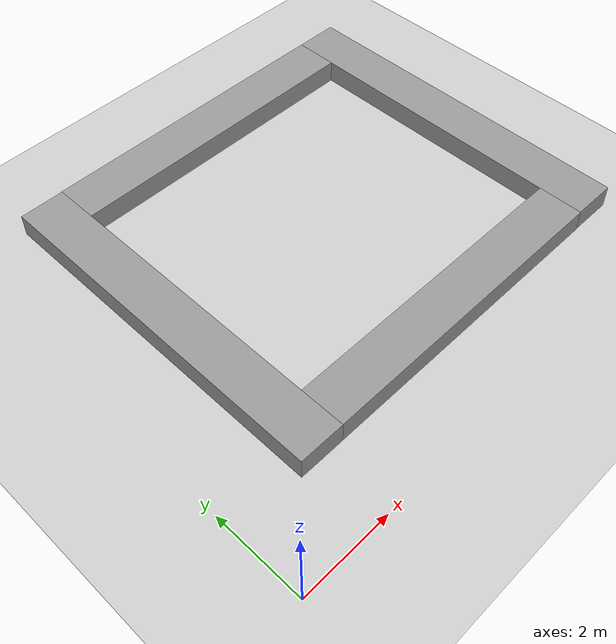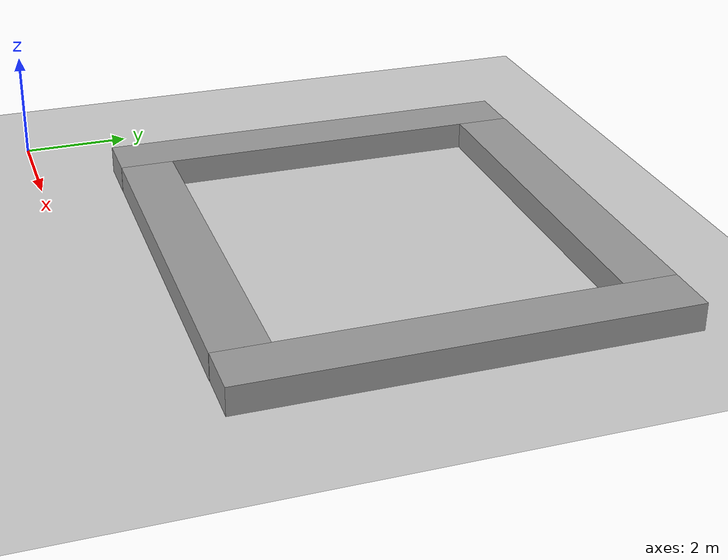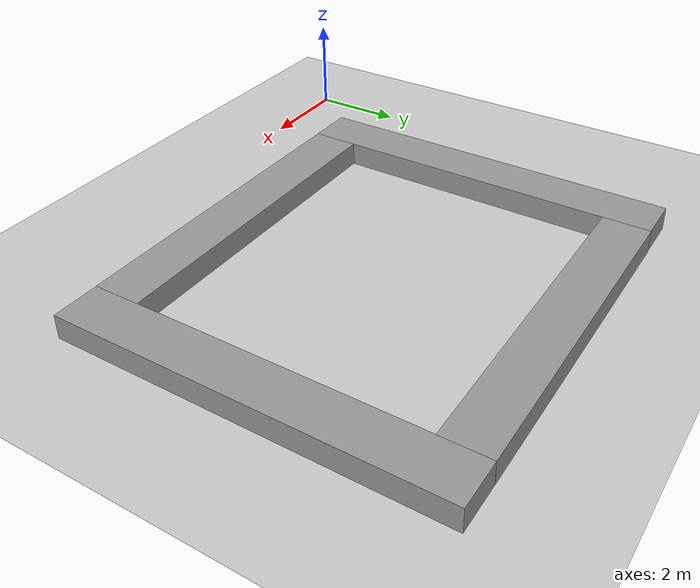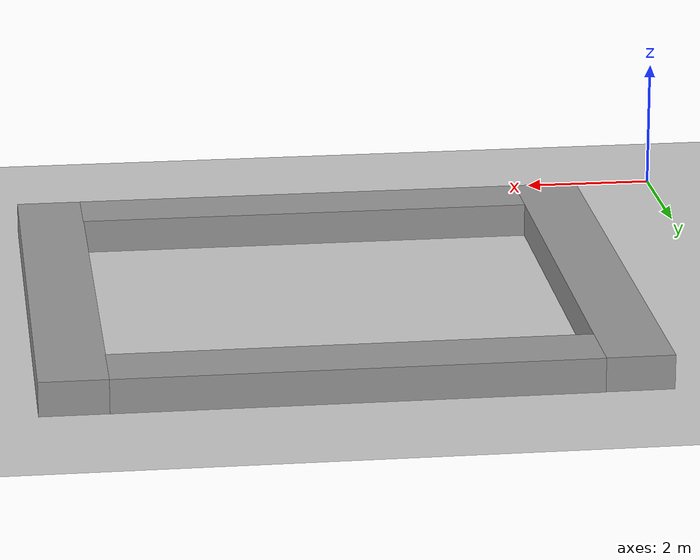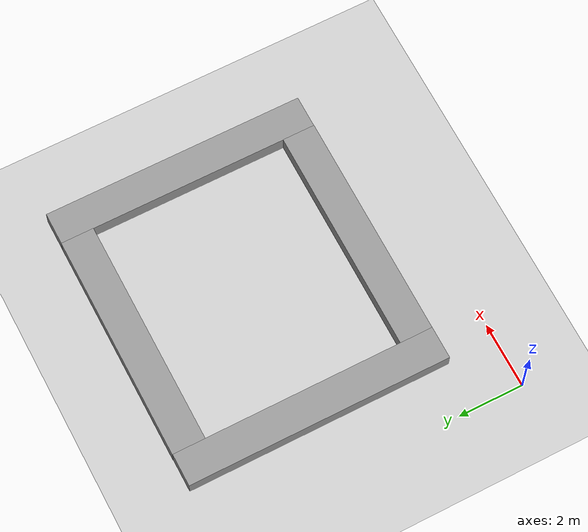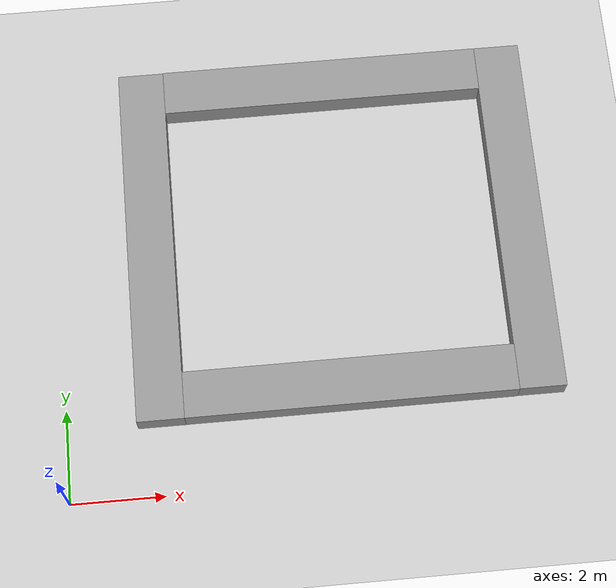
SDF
<sdf version='1.4'>
  <world name='default'>
    <!-- A global light source -->
    <include>
      <uri>model://sun</uri>
    </include>

    <!-- A ground plane -->
    <include>
      <uri>model://ground_plane</uri>
    </include>

    <physics type="ode">
      <real_time_update_rate>1000.0</real_time_update_rate>
      <max_step_size>0.001</max_step_size>
      <real_time_factor>1</real_time_factor>
      <ode>
        <solver>
          <type>quick</type>
          <iters>150</iters>
          <precon_iters>0</precon_iters>
          <sor>1.400000</sor>
          <use_dynamic_moi_rescaling>1</use_dynamic_moi_rescaling>
        </solver>
        <constraints>
          <cfm>0.00001</cfm>
          <erp>0.2</erp>
          <contact_max_correcting_vel>2000.000000</contact_max_correcting_vel>
          <contact_surface_layer>0.01000</contact_surface_layer>
        </constraints>
      </ode>
    </physics>

    <!-- A turtlebot symbol -->
    <include>
      <uri>model://turtlebot3_sala_de_juegos</uri>
    </include>

    <scene>
      <ambient>0.4 0.4 0.4 1</ambient>
      <background>0.7 0.7 0.7 1</background>
      <shadows>true</shadows>
    </scene>

    <gui fullscreen='0'>
      <camera name='user_camera'>
        <pose>0.0 0.0 17.0 0 1.5708 0</pose>
        <view_controller>orbit</view_controller>
      </camera>
    </gui>
  </world>
</sdf>

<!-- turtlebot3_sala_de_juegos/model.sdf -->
<sdf version='1.6'>
  <model name='model.sdf'>
    <link name='link'>
      <pose frame=''>5.98996 1.99729 -2e-05 0 -0 0</pose>
      <inertial>
        <mass>7.00344</mass>
        <inertia>
          <ixx>1.16724</ixx>
          <ixy>0</ixy>
          <ixz>0</ixz>
          <iyy>29.2091</iyy>
          <iyz>0</iyz>
          <izz>29.2091</izz>
        </inertia>
        <pose frame=''>0 0 0 0 -0 0</pose>
      </inertial>
      <self_collide>0</self_collide>
      <kinematic>0</kinematic>
      <visual name='visual'>
        <geometry>
          <box>
            <size>7.00344 1 1</size>
          </box>
        </geometry>
        <material>
          <script>
            <name>Gazebo/Grey</name>
            <uri>file://media/materials/scripts/gazebo.material</uri>
          </script>
          <ambient>0.3 0.3 0.3 1</ambient>
          <diffuse>0.7 0.7 0.7 1</diffuse>
          <specular>0.01 0.01 0.01 1</specular>
          <emissive>0 0 0 1</emissive>
        </material>
        <pose frame=''>0 0 0 0 -0 0</pose>
        <cast_shadows>1</cast_shadows>
        <transparency>0</transparency>
      </visual>
      <collision name='collision'>
        <laser_retro>0</laser_retro>
        <max_contacts>10</max_contacts>
        <pose frame=''>0 0 0 0 -0 0</pose>
        <geometry>
          <box>
            <size>7.00344 1 1</size>
          </box>
        </geometry>
        <surface>
          <friction>
            <ode>
              <mu>1</mu>
              <mu2>1</mu2>
              <fdir1>0 0 0</fdir1>
              <slip1>0</slip1>
              <slip2>0</slip2>
            </ode>
            <torsional>
              <coefficient>1</coefficient>
              <patch_radius>0</patch_radius>
              <surface_radius>0</surface_radius>
              <use_patch_radius>1</use_patch_radius>
              <ode>
                <slip>0</slip>
              </ode>
            </torsional>
          </friction>
          <bounce>
            <restitution_coefficient>0</restitution_coefficient>
            <threshold>1e+06</threshold>
          </bounce>
          <contact>
            <collide_without_contact>0</collide_without_contact>
            <collide_without_contact_bitmask>1</collide_without_contact_bitmask>
            <collide_bitmask>1</collide_bitmask>
            <ode>
              <soft_cfm>0</soft_cfm>
              <soft_erp>0.2</soft_erp>
              <kp>1e+13</kp>
              <kd>1</kd>
              <max_vel>0.01</max_vel>
              <min_depth>0</min_depth>
            </ode>
            <bullet>
              <split_impulse>1</split_impulse>
              <split_impulse_penetration_threshold>-0.01</split_impulse_penetration_threshold>
              <soft_cfm>0</soft_cfm>
              <soft_erp>0.2</soft_erp>
              <kp>1e+13</kp>
              <kd>1</kd>
            </bullet>
          </contact>
        </surface>
      </collision>
    </link>
    <link name='link_clone'>
      <pose frame=''>5.9963 9.00591 -8.8e-05 -1e-05 0 0</pose>
      <inertial>
        <mass>7.00344</mass>
        <inertia>
          <ixx>1.16724</ixx>
          <ixy>0</ixy>
          <ixz>0</ixz>
          <iyy>29.2091</iyy>
          <iyz>0</iyz>
          <izz>29.2091</izz>
        </inertia>
        <pose frame=''>0 0 0 0 -0 0</pose>
      </inertial>
      <self_collide>0</self_collide>
      <kinematic>0</kinematic>
      <visual name='visual'>
        <geometry>
          <box>
            <size>7.00344 1 1</size>
          </box>
        </geometry>
        <material>
          <script>
            <name>Gazebo/Grey</name>
            <uri>file://media/materials/scripts/gazebo.material</uri>
          </script>
          <ambient>0.3 0.3 0.3 1</ambient>
          <diffuse>0.7 0.7 0.7 1</diffuse>
          <specular>0.01 0.01 0.01 1</specular>
          <emissive>0 0 0 1</emissive>
          <shader type='pixel'/>
        </material>
        <pose frame=''>0 0 0 0 -0 0</pose>
        <cast_shadows>1</cast_shadows>
        <transparency>0</transparency>
      </visual>
      <collision name='collision'>
        <laser_retro>0</laser_retro>
        <max_contacts>10</max_contacts>
        <pose frame=''>0 0 0 0 -0 0</pose>
        <geometry>
          <box>
            <size>7.00344 1 1</size>
          </box>
        </geometry>
        <surface>
          <friction>
            <ode>
              <mu>1</mu>
              <mu2>1</mu2>
              <fdir1>0 0 0</fdir1>
              <slip1>0</slip1>
              <slip2>0</slip2>
            </ode>
            <torsional>
              <coefficient>1</coefficient>
              <patch_radius>0</patch_radius>
              <surface_radius>0</surface_radius>
              <use_patch_radius>1</use_patch_radius>
              <ode>
                <slip>0</slip>
              </ode>
            </torsional>
          </friction>
          <bounce>
            <restitution_coefficient>0</restitution_coefficient>
            <threshold>1e+06</threshold>
          </bounce>
          <contact>
            <collide_without_contact>0</collide_without_contact>
            <collide_without_contact_bitmask>1</collide_without_contact_bitmask>
            <collide_bitmask>1</collide_bitmask>
            <ode>
              <soft_cfm>0</soft_cfm>
              <soft_erp>0.2</soft_erp>
              <kp>1e+13</kp>
              <kd>1</kd>
              <max_vel>0.01</max_vel>
              <min_depth>0</min_depth>
            </ode>
            <bullet>
              <split_impulse>1</split_impulse>
              <split_impulse_penetration_threshold>-0.01</split_impulse_penetration_threshold>
              <soft_cfm>0</soft_cfm>
              <soft_erp>0.2</soft_erp>
              <kp>1e+13</kp>
              <kd>1</kd>
            </bullet>
          </contact>
        </surface>
      </collision>
    </link>
    <link name='link_clone_clone'>
      <pose frame=''>9.98769 5.50288 -0.000127 0 -2e-05 -1.57207</pose>
      <inertial>
        <mass>8.00014</mass>
        <inertia>
          <ixx>1.33336</ixx>
          <ixy>0</ixy>
          <ixz>0</ixz>
          <iyy>43.3355</iyy>
          <iyz>0</iyz>
          <izz>43.3355</izz>
        </inertia>
        <pose frame=''>0 0 0 0 -0 0</pose>
      </inertial>
      <self_collide>0</self_collide>
      <kinematic>0</kinematic>
      <visual name='visual'>
        <geometry>
          <box>
            <size>8.00014 1 1</size>
          </box>
        </geometry>
        <material>
          <script>
            <name>Gazebo/Grey</name>
            <uri>file://media/materials/scripts/gazebo.material</uri>
          </script>
          <ambient>0.3 0.3 0.3 1</ambient>
          <diffuse>0.7 0.7 0.7 1</diffuse>
          <specular>0.01 0.01 0.01 1</specular>
          <emissive>0 0 0 1</emissive>
          <shader type='pixel'/>
        </material>
        <pose frame=''>0 0 0 0 -0 0</pose>
        <cast_shadows>1</cast_shadows>
        <transparency>0</transparency>
      </visual>
      <collision name='collision'>
        <laser_retro>0</laser_retro>
        <max_contacts>10</max_contacts>
        <pose frame=''>0 0 0 0 -0 0</pose>
        <geometry>
          <box>
            <size>8.00014 1 1</size>
          </box>
        </geometry>
        <surface>
          <friction>
            <ode>
              <mu>1</mu>
              <mu2>1</mu2>
              <fdir1>0 0 0</fdir1>
              <slip1>0</slip1>
              <slip2>0</slip2>
            </ode>
            <torsional>
              <coefficient>1</coefficient>
              <patch_radius>0</patch_radius>
              <surface_radius>0</surface_radius>
              <use_patch_radius>1</use_patch_radius>
              <ode>
                <slip>0</slip>
              </ode>
            </torsional>
          </friction>
          <bounce>
            <restitution_coefficient>0</restitution_coefficient>
            <threshold>1e+06</threshold>
          </bounce>
          <contact>
            <collide_without_contact>0</collide_without_contact>
            <collide_without_contact_bitmask>1</collide_without_contact_bitmask>
            <collide_bitmask>1</collide_bitmask>
            <ode>
              <soft_cfm>0</soft_cfm>
              <soft_erp>0.2</soft_erp>
              <kp>1e+13</kp>
              <kd>1</kd>
              <max_vel>0.01</max_vel>
              <min_depth>0</min_depth>
            </ode>
            <bullet>
              <split_impulse>1</split_impulse>
              <split_impulse_penetration_threshold>-0.01</split_impulse_penetration_threshold>
              <soft_cfm>0</soft_cfm>
              <soft_erp>0.2</soft_erp>
              <kp>1e+13</kp>
              <kd>1</kd>
            </bullet>
          </contact>
        </surface>
      </collision>
    </link>
    <link name='link_clone_clone_clone'>
      <pose frame=''>1.99296 5.49564 -0.000161 -0 -3e-05 -1.57207</pose>
      <inertial>
        <mass>8.00014</mass>
        <inertia>
          <ixx>1.33336</ixx>
          <ixy>0</ixy>
          <ixz>0</ixz>
          <iyy>43.3355</iyy>
          <iyz>0</iyz>
          <izz>43.3355</izz>
        </inertia>
        <pose frame=''>0 0 0 0 -0 0</pose>
      </inertial>
      <self_collide>0</self_collide>
      <kinematic>0</kinematic>
      <visual name='visual'>
        <geometry>
          <box>
            <size>8.00014 1 1</size>
          </box>
        </geometry>
        <material>
          <script>
            <name>Gazebo/Grey</name>
            <uri>file://media/materials/scripts/gazebo.material</uri>
          </script>
          <ambient>0.3 0.3 0.3 1</ambient>
          <diffuse>0.7 0.7 0.7 1</diffuse>
          <specular>0.01 0.01 0.01 1</specular>
          <emissive>0 0 0 1</emissive>
          <shader type='pixel'/>
        </material>
        <pose frame=''>0 0 0 0 -0 0</pose>
        <cast_shadows>1</cast_shadows>
        <transparency>0</transparency>
      </visual>
      <collision name='collision'>
        <laser_retro>0</laser_retro>
        <max_contacts>10</max_contacts>
        <pose frame=''>0 0 0 0 -0 0</pose>
        <geometry>
          <box>
            <size>8.00014 1 1</size>
          </box>
        </geometry>
        <surface>
          <friction>
            <ode>
              <mu>1</mu>
              <mu2>1</mu2>
              <fdir1>0 0 0</fdir1>
              <slip1>0</slip1>
              <slip2>0</slip2>
            </ode>
            <torsional>
              <coefficient>1</coefficient>
              <patch_radius>0</patch_radius>
              <surface_radius>0</surface_radius>
              <use_patch_radius>1</use_patch_radius>
              <ode>
                <slip>0</slip>
              </ode>
            </torsional>
          </friction>
          <bounce>
            <restitution_coefficient>0</restitution_coefficient>
            <threshold>1e+06</threshold>
          </bounce>
          <contact>
            <collide_without_contact>0</collide_without_contact>
            <collide_without_contact_bitmask>1</collide_without_contact_bitmask>
            <collide_bitmask>1</collide_bitmask>
            <ode>
              <soft_cfm>0</soft_cfm>
              <soft_erp>0.2</soft_erp>
              <kp>1e+13</kp>
              <kd>1</kd>
              <max_vel>0.01</max_vel>
              <min_depth>0</min_depth>
            </ode>
            <bullet>
              <split_impulse>1</split_impulse>
              <split_impulse_penetration_threshold>-0.01</split_impulse_penetration_threshold>
              <soft_cfm>0</soft_cfm>
              <soft_erp>0.2</soft_erp>
              <kp>1e+13</kp>
              <kd>1</kd>
            </bullet>
          </contact>
        </surface>
      </collision>
    </link>
    <static>0</static>
    <allow_auto_disable>1</allow_auto_disable>
  </model>
</sdf>
